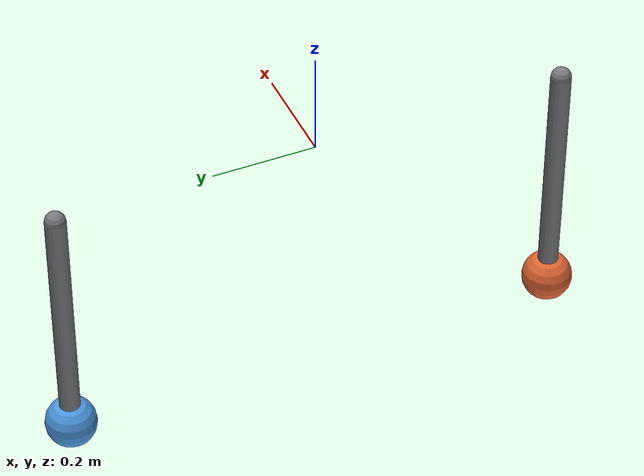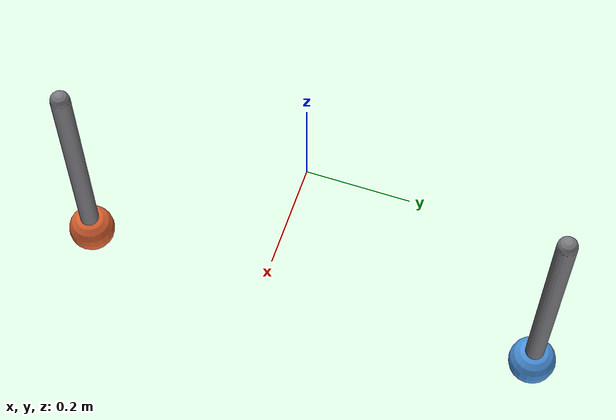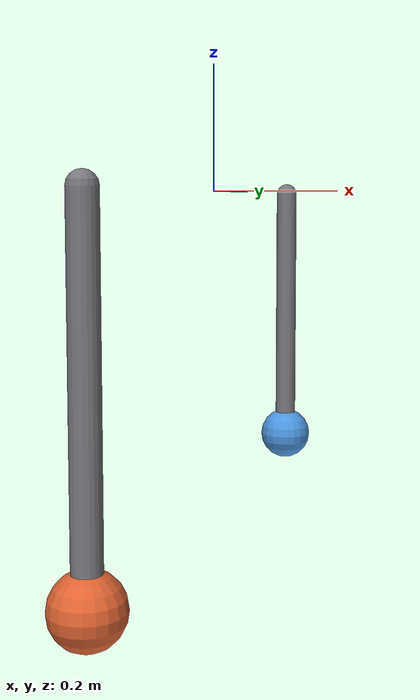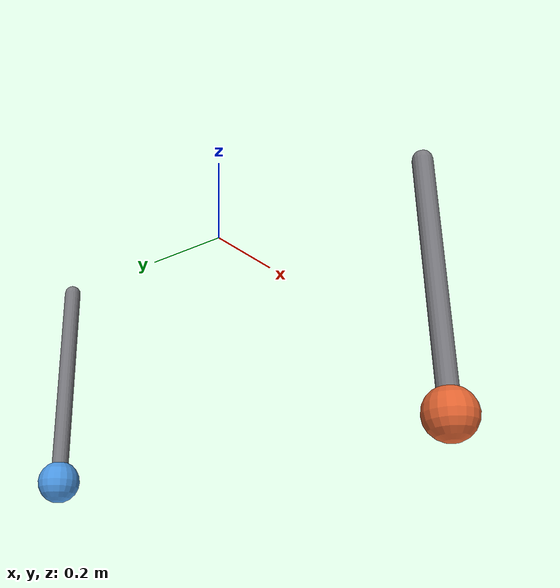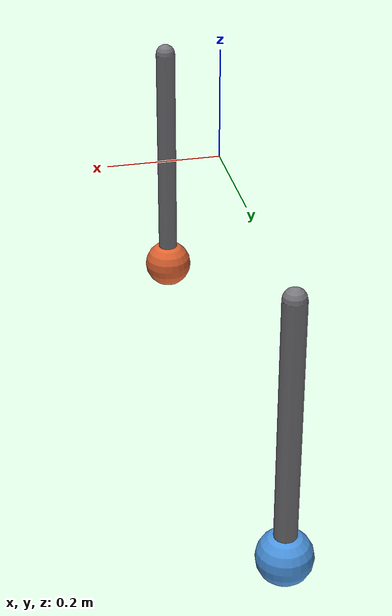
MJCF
<mujoco model="gear-and-limits">
  <compiler angle="radian" autolimits="true"/>
  <option gravity="0 0 0" timestep="0.001" integrator="RK4"/>

  <default>
    <geom contype="0" conaffinity="0"/>
  </default>

  <worldbody>
    <body name="arm_a" pos="0 0.5 0">
      <joint name="hinge_a" type="hinge" axis="0 1 0" armature="0.01" damping="1.0"/>
      <inertial pos="0 0 -0.25" mass="1.0" diaginertia="0.01 0.01 0.01"/>
      <geom name="rod_a" type="capsule" size="0.02"
            fromto="0 0 0  0 0 -0.5" rgba="0.48 0.48 0.50 1"/>
      <geom name="tip_a" type="sphere" size="0.05"
            pos="0 0 -0.5" rgba="0.3 0.6 0.9 1"/>
    </body>
    <body name="arm_b" pos="0 -0.5 0">
      <joint name="hinge_b" type="hinge" axis="0 1 0" armature="0.01" damping="1.0"/>
      <inertial pos="0 0 -0.25" mass="1.0" diaginertia="0.01 0.01 0.01"/>
      <geom name="rod_b" type="capsule" size="0.02"
            fromto="0 0 0  0 0 -0.5" rgba="0.48 0.48 0.50 1"/>
      <geom name="tip_b" type="sphere" size="0.05"
            pos="0 0 -0.5" rgba="0.9 0.4 0.2 1"/>
    </body>
  </worldbody>

  <actuator>
    <motor name="baseline" joint="hinge_a" gear="1"/>
    <motor name="geared_limited" joint="hinge_b" gear="5" forcerange="-3 3"/>
  </actuator>

  <sensor>
    <actuatorfrc name="force_a" actuator="baseline"/>
    <actuatorfrc name="force_b" actuator="geared_limited"/>
    <jointvel name="vel_a" joint="hinge_a"/>
    <jointvel name="vel_b" joint="hinge_b"/>
  </sensor>
</mujoco>
